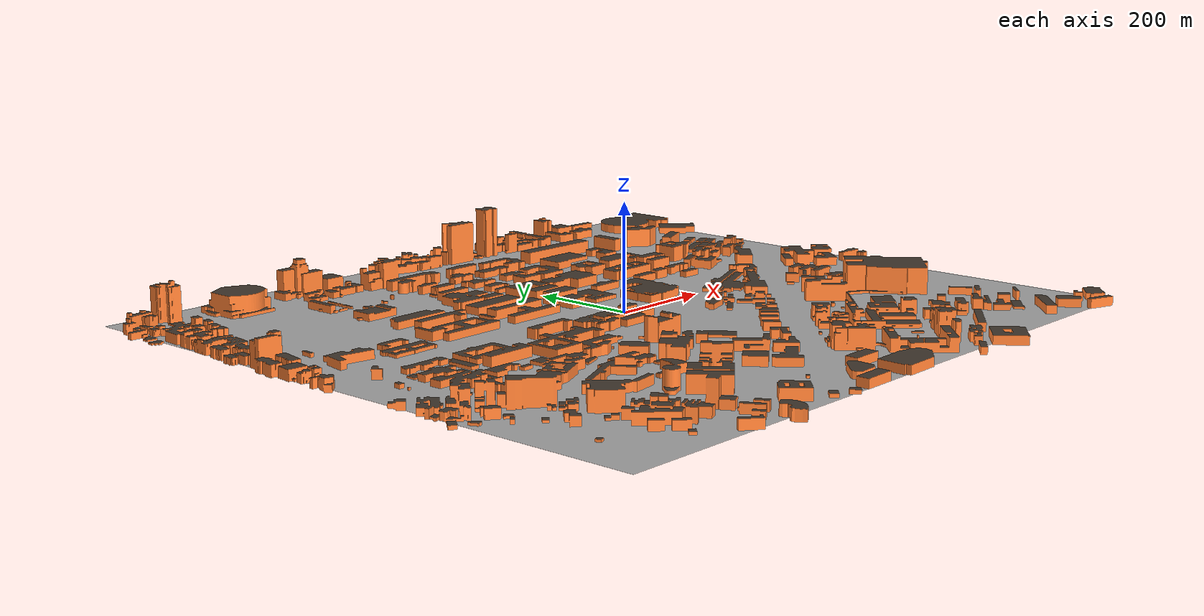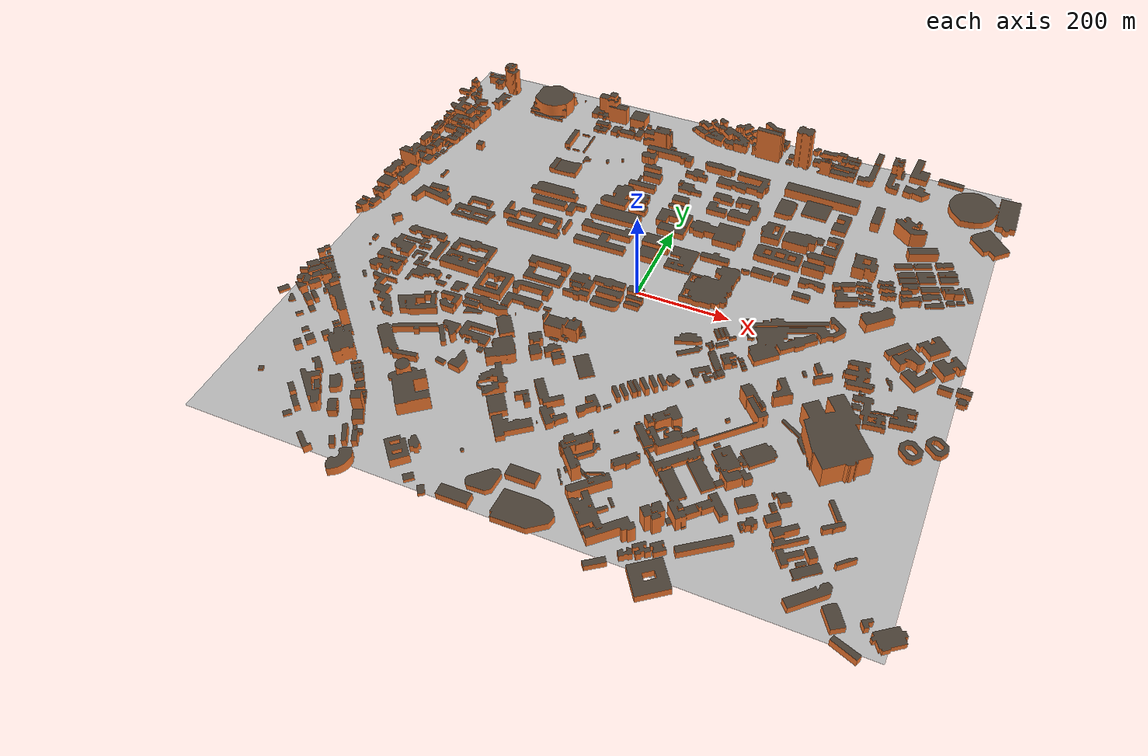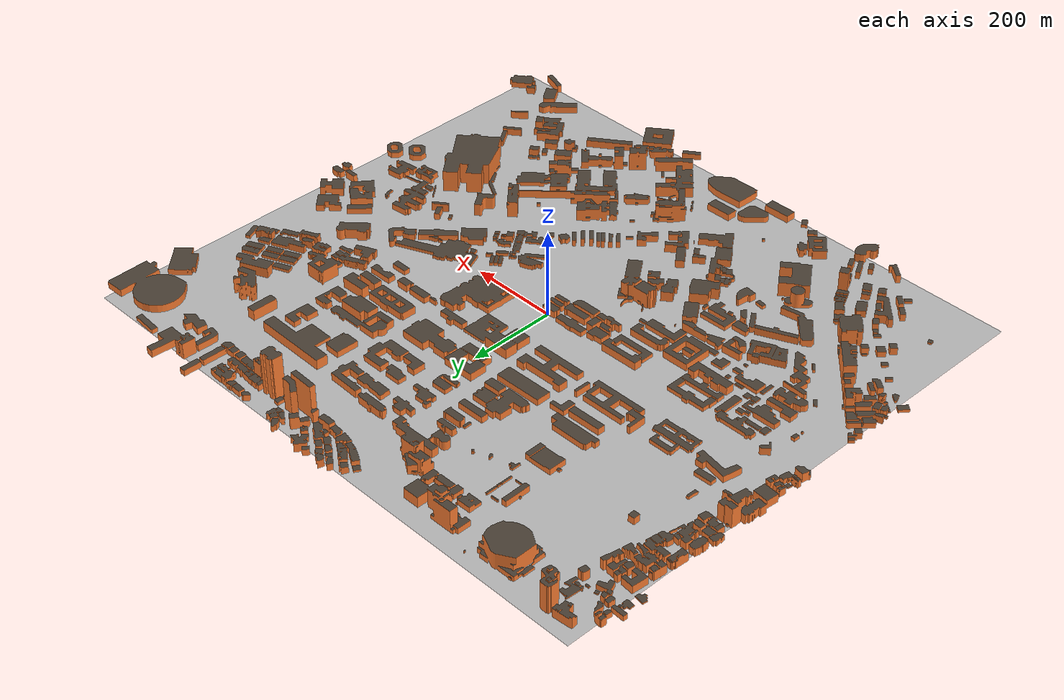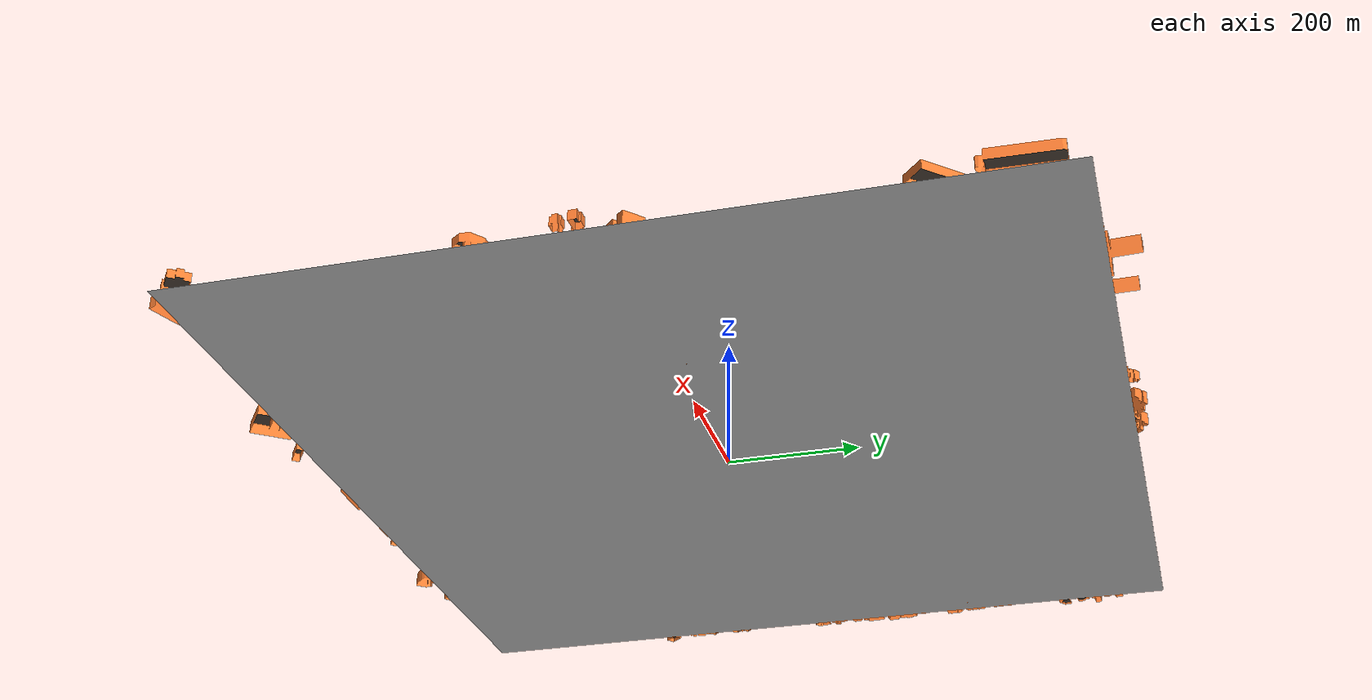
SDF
<?xml version="1.0"?>
<sdf version="1.5">
  <model name="ntu">
    <pose>0 0 0 0 0 0</pose>
    <static>true</static>
    <link name="body">
      <visual name="visual">
        <geometry>
          <mesh>
            <uri>model://ntu_campus/media/Terrain.dae</uri>
          </mesh>
        </geometry>
      </visual>
      <collision name="collision">
        <geometry>
          <mesh>
            <uri>model://ntu_campus/media/Terrain.dae</uri>
          </mesh>
        </geometry>
      </collision>
    </link>

    <link name="buildings">
      <visual name="visual">
        <geometry>
          <mesh>
            <uri>model://ntu_campus/media/Buildings.dae</uri>
          </mesh>
        </geometry>
      </visual>
      <collision name="collision">
        <geometry>
          <mesh>
            <uri>model://ntu_campus/media/Buildings.dae</uri>
          </mesh>
        </geometry>
      </collision>
    </link>
  </model>
</sdf>
